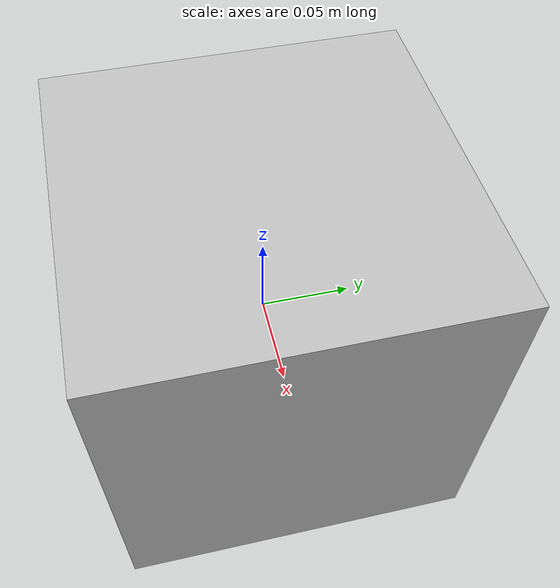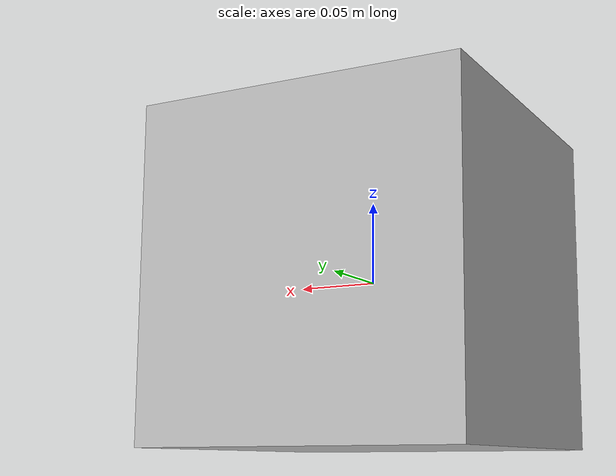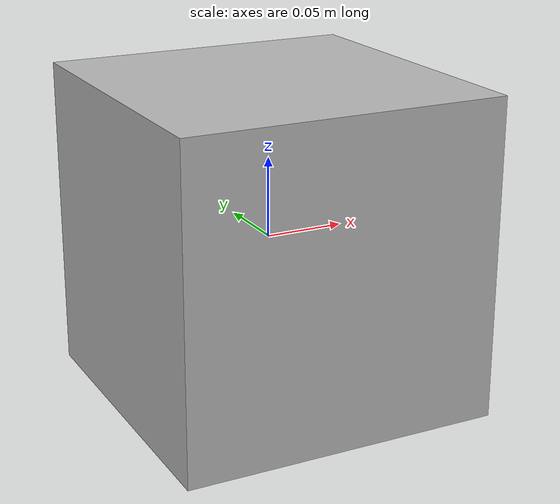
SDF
<?xml version="1.0" ?>
<sdf version="1.6">
  <model name="kalman_edificio">
    <pose>0 0 0 0 0 0</pose>
    <link name="link">
      <inertial>
        <mass>2</mass>
        <inertia>
          <ixx>0.041666667</ixx>
          <ixy>0</ixy>
          <ixz>0</ixz>
          <iyy>0.056666667</iyy>
          <iyz>0</iyz>
          <izz>0.068333333</izz>
        </inertia>
      </inertial>
      <collision name="collision">
        <geometry>
          <box>
            <size>0.2 0.2 0.2</size>
          </box>
        </geometry>
        <surface>
          <friction>
            <ode>
              <mu>1.0</mu>
              <mu2>1.0</mu2>
            </ode>
          </friction>
          <contact>
            <ode>
              <kp>10000000.0</kp>
              <kd>1.0</kd>
              <min_depth>0.001</min_depth>
              <max_vel>0.1</max_vel>
            </ode>
          </contact>
        </surface>
      </collision>
      <visual name="visual">
        <pose>0 0 -0.10 0 0 0</pose>
        <geometry>
          <mesh>
            <uri>model://kalman_edificio/meshes/kalman_edificio.dae</uri>
            <scale>0.5 0.5 0.5</scale>
          </mesh>
        </geometry>
      </visual>
    </link>
  </model>
</sdf>
